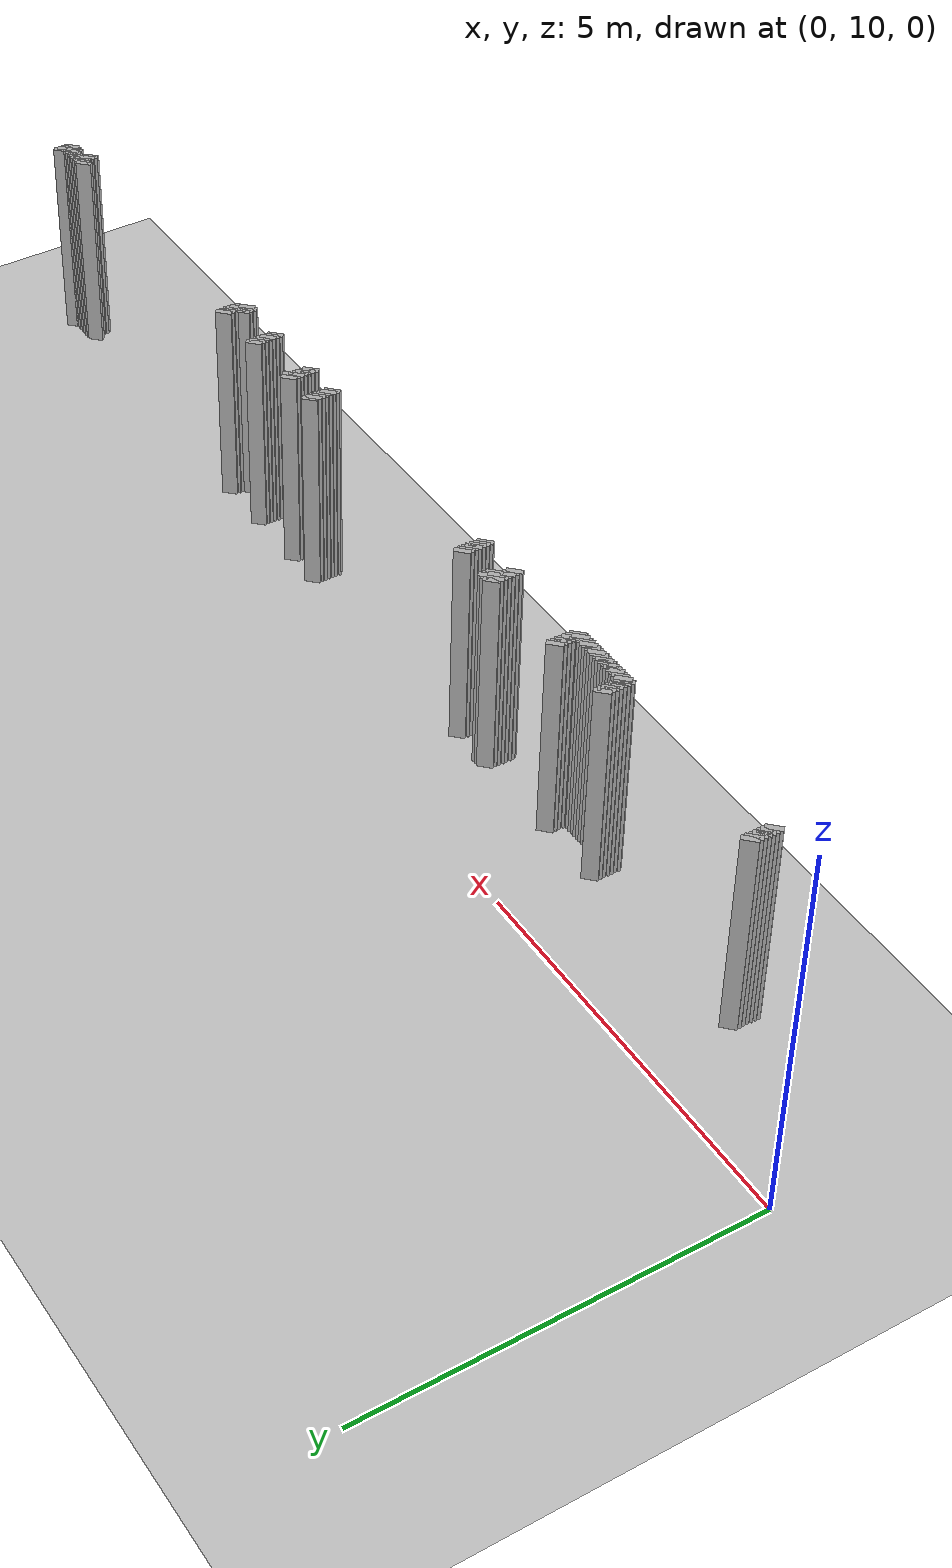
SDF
<sdf version="1.5">
 <world name="default">
  <include><uri>model://ground_plane</uri></include>
  <include><uri>model://sun</uri></include>
  <model name="grey_wall_1905">
   <static>1</static>
   <link name="link">
    <pose>2.2 8.9  1.4 0 0 -0.7853981633974572</pose>
    <collision name="collision">
     <geometry><box><size>0.07071067811865513 .2  2.8</size></box></geometry>
    </collision>
    <visual name="visual">
     <cast_shadows>0</cast_shadows>
     <geometry><box><size>0.07071067811865513 .2  2.8</size></box></geometry>
    </visual>
   </link>
  </model>
  <model name="grey_wall_1906">
   <static>1</static>
   <link name="link">
    <pose>4.800000000000001 8.9  1.4 0 0 -0.7853981633974483</pose>
    <collision name="collision">
     <geometry><box><size>0.07071067811865576 .2  2.8</size></box></geometry>
    </collision>
    <visual name="visual">
     <cast_shadows>0</cast_shadows>
     <geometry><box><size>0.07071067811865576 .2  2.8</size></box></geometry>
    </visual>
   </link>
  </model>
  <model name="grey_wall_1907">
   <static>1</static>
   <link name="link">
    <pose>5.7 8.9  1.4 0 0 -0.7853981633974483</pose>
    <collision name="collision">
     <geometry><box><size>0.07071067811865576 .2  2.8</size></box></geometry>
    </collision>
    <visual name="visual">
     <cast_shadows>0</cast_shadows>
     <geometry><box><size>0.07071067811865576 .2  2.8</size></box></geometry>
    </visual>
   </link>
  </model>
  <model name="grey_wall_1908">
   <static>1</static>
   <link name="link">
    <pose>6.95 8.9  1.4 0 0 -0.7853981633974483</pose>
    <collision name="collision">
     <geometry><box><size>0.07071067811865576 .2  2.8</size></box></geometry>
    </collision>
    <visual name="visual">
     <cast_shadows>0</cast_shadows>
     <geometry><box><size>0.07071067811865576 .2  2.8</size></box></geometry>
    </visual>
   </link>
  </model>
  <model name="grey_wall_1909">
   <static>1</static>
   <link name="link">
    <pose>7.0 8.9  1.4 0 0 -0.7853981633974483</pose>
    <collision name="collision">
     <geometry><box><size>0.07071067811865576 .2  2.8</size></box></geometry>
    </collision>
    <visual name="visual">
     <cast_shadows>0</cast_shadows>
     <geometry><box><size>0.07071067811865576 .2  2.8</size></box></geometry>
    </visual>
   </link>
  </model>
  <model name="grey_wall_1910">
   <static>1</static>
   <link name="link">
    <pose>7.050000000000001 8.9  1.4 0 0 -0.7853981633974483</pose>
    <collision name="collision">
     <geometry><box><size>0.07071067811865576 .2  2.8</size></box></geometry>
    </collision>
    <visual name="visual">
     <cast_shadows>0</cast_shadows>
     <geometry><box><size>0.07071067811865576 .2  2.8</size></box></geometry>
    </visual>
   </link>
  </model>
  <model name="grey_wall_1911">
   <static>1</static>
   <link name="link">
    <pose>7.550000000000001 8.9  1.4 0 0 -0.7853981633974483</pose>
    <collision name="collision">
     <geometry><box><size>0.07071067811865576 .2  2.8</size></box></geometry>
    </collision>
    <visual name="visual">
     <cast_shadows>0</cast_shadows>
     <geometry><box><size>0.07071067811865576 .2  2.8</size></box></geometry>
    </visual>
   </link>
  </model>
  <model name="grey_wall_1912">
   <static>1</static>
   <link name="link">
    <pose>10.9 8.9  1.4 0 0 -0.7853981633974483</pose>
    <collision name="collision">
     <geometry><box><size>0.07071067811865576 .2  2.8</size></box></geometry>
    </collision>
    <visual name="visual">
     <cast_shadows>0</cast_shadows>
     <geometry><box><size>0.07071067811865576 .2  2.8</size></box></geometry>
    </visual>
   </link>
  </model>
  <model name="grey_wall_1913">
   <static>1</static>
   <link name="link">
    <pose>11.4 8.9  1.4 0 0 -0.7853981633974483</pose>
    <collision name="collision">
     <geometry><box><size>0.07071067811865576 .2  2.8</size></box></geometry>
    </collision>
    <visual name="visual">
     <cast_shadows>0</cast_shadows>
     <geometry><box><size>0.07071067811865576 .2  2.8</size></box></geometry>
    </visual>
   </link>
  </model>
  <model name="grey_wall_1914">
   <static>1</static>
   <link name="link">
    <pose>12.25 8.9  1.4 0 0 -0.7853981633974483</pose>
    <collision name="collision">
     <geometry><box><size>0.07071067811865576 .2  2.8</size></box></geometry>
    </collision>
    <visual name="visual">
     <cast_shadows>0</cast_shadows>
     <geometry><box><size>0.07071067811865576 .2  2.8</size></box></geometry>
    </visual>
   </link>
  </model>
  <model name="grey_wall_1915">
   <static>1</static>
   <link name="link">
    <pose>13.0 8.9  1.4 0 0 -0.7853981633974483</pose>
    <collision name="collision">
     <geometry><box><size>0.07071067811865576 .2  2.8</size></box></geometry>
    </collision>
    <visual name="visual">
     <cast_shadows>0</cast_shadows>
     <geometry><box><size>0.07071067811865576 .2  2.8</size></box></geometry>
    </visual>
   </link>
  </model>
  <model name="grey_wall_1916">
   <static>1</static>
   <link name="link">
    <pose>17.400000000000002 8.9  1.4 0 0 -0.7853981633974838</pose>
    <collision name="collision">
     <geometry><box><size>0.07071067811865325 .2  2.8</size></box></geometry>
    </collision>
    <visual name="visual">
     <cast_shadows>0</cast_shadows>
     <geometry><box><size>0.07071067811865325 .2  2.8</size></box></geometry>
    </visual>
   </link>
  </model>
  <model name="grey_wall_1917">
   <static>1</static>
   <link name="link">
    <pose>2.2 8.85  1.4 0 0 -0.7853981633974572</pose>
    <collision name="collision">
     <geometry><box><size>0.07071067811865513 .2  2.8</size></box></geometry>
    </collision>
    <visual name="visual">
     <cast_shadows>0</cast_shadows>
     <geometry><box><size>0.07071067811865513 .2  2.8</size></box></geometry>
    </visual>
   </link>
  </model>
  <model name="grey_wall_1918">
   <static>1</static>
   <link name="link">
    <pose>4.800000000000001 8.85  1.4 0 0 -0.7853981633974483</pose>
    <collision name="collision">
     <geometry><box><size>0.07071067811865576 .2  2.8</size></box></geometry>
    </collision>
    <visual name="visual">
     <cast_shadows>0</cast_shadows>
     <geometry><box><size>0.07071067811865576 .2  2.8</size></box></geometry>
    </visual>
   </link>
  </model>
  <model name="grey_wall_1919">
   <static>1</static>
   <link name="link">
    <pose>5.7 8.85  1.4 0 0 -0.7853981633974483</pose>
    <collision name="collision">
     <geometry><box><size>0.07071067811865576 .2  2.8</size></box></geometry>
    </collision>
    <visual name="visual">
     <cast_shadows>0</cast_shadows>
     <geometry><box><size>0.07071067811865576 .2  2.8</size></box></geometry>
    </visual>
   </link>
  </model>
  <model name="grey_wall_1920">
   <static>1</static>
   <link name="link">
    <pose>6.95 8.85  1.4 0 0 -0.7853981633974483</pose>
    <collision name="collision">
     <geometry><box><size>0.07071067811865576 .2  2.8</size></box></geometry>
    </collision>
    <visual name="visual">
     <cast_shadows>0</cast_shadows>
     <geometry><box><size>0.07071067811865576 .2  2.8</size></box></geometry>
    </visual>
   </link>
  </model>
  <model name="grey_wall_1921">
   <static>1</static>
   <link name="link">
    <pose>7.050000000000001 8.85  1.4 0 0 -0.7853981633974483</pose>
    <collision name="collision">
     <geometry><box><size>0.07071067811865576 .2  2.8</size></box></geometry>
    </collision>
    <visual name="visual">
     <cast_shadows>0</cast_shadows>
     <geometry><box><size>0.07071067811865576 .2  2.8</size></box></geometry>
    </visual>
   </link>
  </model>
  <model name="grey_wall_1922">
   <static>1</static>
   <link name="link">
    <pose>7.550000000000001 8.85  1.4 0 0 -0.7853981633974483</pose>
    <collision name="collision">
     <geometry><box><size>0.07071067811865576 .2  2.8</size></box></geometry>
    </collision>
    <visual name="visual">
     <cast_shadows>0</cast_shadows>
     <geometry><box><size>0.07071067811865576 .2  2.8</size></box></geometry>
    </visual>
   </link>
  </model>
  <model name="grey_wall_1923">
   <static>1</static>
   <link name="link">
    <pose>10.9 8.85  1.4 0 0 -0.7853981633974483</pose>
    <collision name="collision">
     <geometry><box><size>0.07071067811865576 .2  2.8</size></box></geometry>
    </collision>
    <visual name="visual">
     <cast_shadows>0</cast_shadows>
     <geometry><box><size>0.07071067811865576 .2  2.8</size></box></geometry>
    </visual>
   </link>
  </model>
  <model name="grey_wall_1924">
   <static>1</static>
   <link name="link">
    <pose>11.4 8.85  1.4 0 0 -0.7853981633974483</pose>
    <collision name="collision">
     <geometry><box><size>0.07071067811865576 .2  2.8</size></box></geometry>
    </collision>
    <visual name="visual">
     <cast_shadows>0</cast_shadows>
     <geometry><box><size>0.07071067811865576 .2  2.8</size></box></geometry>
    </visual>
   </link>
  </model>
  <model name="grey_wall_1925">
   <static>1</static>
   <link name="link">
    <pose>11.450000000000001 8.85  1.4 0 0 -0.7853981633974483</pose>
    <collision name="collision">
     <geometry><box><size>0.07071067811865576 .2  2.8</size></box></geometry>
    </collision>
    <visual name="visual">
     <cast_shadows>0</cast_shadows>
     <geometry><box><size>0.07071067811865576 .2  2.8</size></box></geometry>
    </visual>
   </link>
  </model>
  <model name="grey_wall_1926">
   <static>1</static>
   <link name="link">
    <pose>12.25 8.85  1.4 0 0 -0.7853981633974483</pose>
    <collision name="collision">
     <geometry><box><size>0.07071067811865576 .2  2.8</size></box></geometry>
    </collision>
    <visual name="visual">
     <cast_shadows>0</cast_shadows>
     <geometry><box><size>0.07071067811865576 .2  2.8</size></box></geometry>
    </visual>
   </link>
  </model>
  <model name="grey_wall_1927">
   <static>1</static>
   <link name="link">
    <pose>13.0 8.85  1.4 0 0 -0.7853981633974483</pose>
    <collision name="collision">
     <geometry><box><size>0.07071067811865576 .2  2.8</size></box></geometry>
    </collision>
    <visual name="visual">
     <cast_shadows>0</cast_shadows>
     <geometry><box><size>0.07071067811865576 .2  2.8</size></box></geometry>
    </visual>
   </link>
  </model>
  <model name="grey_wall_1928">
   <static>1</static>
   <link name="link">
    <pose>17.400000000000002 8.85  1.4 0 0 -0.7853981633974838</pose>
    <collision name="collision">
     <geometry><box><size>0.07071067811865325 .2  2.8</size></box></geometry>
    </collision>
    <visual name="visual">
     <cast_shadows>0</cast_shadows>
     <geometry><box><size>0.07071067811865325 .2  2.8</size></box></geometry>
    </visual>
   </link>
  </model>
  <model name="grey_wall_1929">
   <static>1</static>
   <link name="link">
    <pose>2.2 8.8  1.4 0 0 -0.7853981633974572</pose>
    <collision name="collision">
     <geometry><box><size>0.07071067811865513 .2  2.8</size></box></geometry>
    </collision>
    <visual name="visual">
     <cast_shadows>0</cast_shadows>
     <geometry><box><size>0.07071067811865513 .2  2.8</size></box></geometry>
    </visual>
   </link>
  </model>
  <model name="grey_wall_1930">
   <static>1</static>
   <link name="link">
    <pose>4.800000000000001 8.8  1.4 0 0 -0.7853981633974483</pose>
    <collision name="collision">
     <geometry><box><size>0.07071067811865576 .2  2.8</size></box></geometry>
    </collision>
    <visual name="visual">
     <cast_shadows>0</cast_shadows>
     <geometry><box><size>0.07071067811865576 .2  2.8</size></box></geometry>
    </visual>
   </link>
  </model>
  <model name="grey_wall_1931">
   <static>1</static>
   <link name="link">
    <pose>5.7 8.8  1.4 0 0 -0.7853981633974483</pose>
    <collision name="collision">
     <geometry><box><size>0.07071067811865576 .2  2.8</size></box></geometry>
    </collision>
    <visual name="visual">
     <cast_shadows>0</cast_shadows>
     <geometry><box><size>0.07071067811865576 .2  2.8</size></box></geometry>
    </visual>
   </link>
  </model>
  <model name="grey_wall_1932">
   <static>1</static>
   <link name="link">
    <pose>6.95 8.8  1.4 0 0 -0.7853981633974483</pose>
    <collision name="collision">
     <geometry><box><size>0.07071067811865576 .2  2.8</size></box></geometry>
    </collision>
    <visual name="visual">
     <cast_shadows>0</cast_shadows>
     <geometry><box><size>0.07071067811865576 .2  2.8</size></box></geometry>
    </visual>
   </link>
  </model>
  <model name="grey_wall_1933">
   <static>1</static>
   <link name="link">
    <pose>7.0 8.8  1.4 0 0 -0.7853981633974483</pose>
    <collision name="collision">
     <geometry><box><size>0.07071067811865576 .2  2.8</size></box></geometry>
    </collision>
    <visual name="visual">
     <cast_shadows>0</cast_shadows>
     <geometry><box><size>0.07071067811865576 .2  2.8</size></box></geometry>
    </visual>
   </link>
  </model>
  <model name="grey_wall_1934">
   <static>1</static>
   <link name="link">
    <pose>7.050000000000001 8.8  1.4 0 0 -0.7853981633974483</pose>
    <collision name="collision">
     <geometry><box><size>0.07071067811865576 .2  2.8</size></box></geometry>
    </collision>
    <visual name="visual">
     <cast_shadows>0</cast_shadows>
     <geometry><box><size>0.07071067811865576 .2  2.8</size></box></geometry>
    </visual>
   </link>
  </model>
  <model name="grey_wall_1935">
   <static>1</static>
   <link name="link">
    <pose>7.550000000000001 8.8  1.4 0 0 -0.7853981633974483</pose>
    <collision name="collision">
     <geometry><box><size>0.07071067811865576 .2  2.8</size></box></geometry>
    </collision>
    <visual name="visual">
     <cast_shadows>0</cast_shadows>
     <geometry><box><size>0.07071067811865576 .2  2.8</size></box></geometry>
    </visual>
   </link>
  </model>
  <model name="grey_wall_1936">
   <static>1</static>
   <link name="link">
    <pose>10.9 8.8  1.4 0 0 -0.7853981633974483</pose>
    <collision name="collision">
     <geometry><box><size>0.07071067811865576 .2  2.8</size></box></geometry>
    </collision>
    <visual name="visual">
     <cast_shadows>0</cast_shadows>
     <geometry><box><size>0.07071067811865576 .2  2.8</size></box></geometry>
    </visual>
   </link>
  </model>
  <model name="grey_wall_1937">
   <static>1</static>
   <link name="link">
    <pose>11.4 8.8  1.4 0 0 -0.7853981633974483</pose>
    <collision name="collision">
     <geometry><box><size>0.07071067811865576 .2  2.8</size></box></geometry>
    </collision>
    <visual name="visual">
     <cast_shadows>0</cast_shadows>
     <geometry><box><size>0.07071067811865576 .2  2.8</size></box></geometry>
    </visual>
   </link>
  </model>
  <model name="grey_wall_1938">
   <static>1</static>
   <link name="link">
    <pose>12.25 8.8  1.4 0 0 -0.7853981633974483</pose>
    <collision name="collision">
     <geometry><box><size>0.07071067811865576 .2  2.8</size></box></geometry>
    </collision>
    <visual name="visual">
     <cast_shadows>0</cast_shadows>
     <geometry><box><size>0.07071067811865576 .2  2.8</size></box></geometry>
    </visual>
   </link>
  </model>
  <model name="grey_wall_1939">
   <static>1</static>
   <link name="link">
    <pose>13.0 8.8  1.4 0 0 -0.7853981633974483</pose>
    <collision name="collision">
     <geometry><box><size>0.07071067811865576 .2  2.8</size></box></geometry>
    </collision>
    <visual name="visual">
     <cast_shadows>0</cast_shadows>
     <geometry><box><size>0.07071067811865576 .2  2.8</size></box></geometry>
    </visual>
   </link>
  </model>
  <model name="grey_wall_1940">
   <static>1</static>
   <link name="link">
    <pose>16.95 8.8  1.4 0 0 -0.7853981633974838</pose>
    <collision name="collision">
     <geometry><box><size>0.07071067811865325 .2  2.8</size></box></geometry>
    </collision>
    <visual name="visual">
     <cast_shadows>0</cast_shadows>
     <geometry><box><size>0.07071067811865325 .2  2.8</size></box></geometry>
    </visual>
   </link>
  </model>
  <model name="grey_wall_1941">
   <static>1</static>
   <link name="link">
    <pose>17.0 8.8  1.4 0 0 -0.7853981633974838</pose>
    <collision name="collision">
     <geometry><box><size>0.07071067811865325 .2  2.8</size></box></geometry>
    </collision>
    <visual name="visual">
     <cast_shadows>0</cast_shadows>
     <geometry><box><size>0.07071067811865325 .2  2.8</size></box></geometry>
    </visual>
   </link>
  </model>
  <model name="grey_wall_1942">
   <static>1</static>
   <link name="link">
    <pose>17.05 8.8  1.4 0 0 -0.7853981633974838</pose>
    <collision name="collision">
     <geometry><box><size>0.07071067811865325 .2  2.8</size></box></geometry>
    </collision>
    <visual name="visual">
     <cast_shadows>0</cast_shadows>
     <geometry><box><size>0.07071067811865325 .2  2.8</size></box></geometry>
    </visual>
   </link>
  </model>
  <model name="grey_wall_1943">
   <static>1</static>
   <link name="link">
    <pose>17.1 8.8  1.4 0 0 -0.7853981633974838</pose>
    <collision name="collision">
     <geometry><box><size>0.07071067811865325 .2  2.8</size></box></geometry>
    </collision>
    <visual name="visual">
     <cast_shadows>0</cast_shadows>
     <geometry><box><size>0.07071067811865325 .2  2.8</size></box></geometry>
    </visual>
   </link>
  </model>
  <model name="grey_wall_1944">
   <static>1</static>
   <link name="link">
    <pose>17.150000000000002 8.8  1.4 0 0 -0.7853981633974838</pose>
    <collision name="collision">
     <geometry><box><size>0.07071067811865325 .2  2.8</size></box></geometry>
    </collision>
    <visual name="visual">
     <cast_shadows>0</cast_shadows>
     <geometry><box><size>0.07071067811865325 .2  2.8</size></box></geometry>
    </visual>
   </link>
  </model>
  <model name="grey_wall_1945">
   <static>1</static>
   <link name="link">
    <pose>17.2 8.8  1.4 0 0 -0.7853981633974838</pose>
    <collision name="collision">
     <geometry><box><size>0.07071067811865325 .2  2.8</size></box></geometry>
    </collision>
    <visual name="visual">
     <cast_shadows>0</cast_shadows>
     <geometry><box><size>0.07071067811865325 .2  2.8</size></box></geometry>
    </visual>
   </link>
  </model>
  <model name="grey_wall_1946">
   <static>1</static>
   <link name="link">
    <pose>17.25 8.8  1.4 0 0 -0.7853981633974838</pose>
    <collision name="collision">
     <geometry><box><size>0.07071067811865325 .2  2.8</size></box></geometry>
    </collision>
    <visual name="visual">
     <cast_shadows>0</cast_shadows>
     <geometry><box><size>0.07071067811865325 .2  2.8</size></box></geometry>
    </visual>
   </link>
  </model>
  <model name="grey_wall_1947">
   <static>1</static>
   <link name="link">
    <pose>17.3 8.8  1.4 0 0 -0.7853981633974838</pose>
    <collision name="collision">
     <geometry><box><size>0.07071067811865325 .2  2.8</size></box></geometry>
    </collision>
    <visual name="visual">
     <cast_shadows>0</cast_shadows>
     <geometry><box><size>0.07071067811865325 .2  2.8</size></box></geometry>
    </visual>
   </link>
  </model>
  <model name="grey_wall_1948">
   <static>1</static>
   <link name="link">
    <pose>17.400000000000002 8.8  1.4 0 0 -0.7853981633974838</pose>
    <collision name="collision">
     <geometry><box><size>0.07071067811865325 .2  2.8</size></box></geometry>
    </collision>
    <visual name="visual">
     <cast_shadows>0</cast_shadows>
     <geometry><box><size>0.07071067811865325 .2  2.8</size></box></geometry>
    </visual>
   </link>
  </model>
  <model name="grey_wall_1949">
   <static>1</static>
   <link name="link">
    <pose>2.2 8.75  1.4 0 0 -0.7853981633974572</pose>
    <collision name="collision">
     <geometry><box><size>0.07071067811865513 .2  2.8</size></box></geometry>
    </collision>
    <visual name="visual">
     <cast_shadows>0</cast_shadows>
     <geometry><box><size>0.07071067811865513 .2  2.8</size></box></geometry>
    </visual>
   </link>
  </model>
  <model name="grey_wall_1950">
   <static>1</static>
   <link name="link">
    <pose>4.800000000000001 8.75  1.4 0 0 -0.7853981633974483</pose>
    <collision name="collision">
     <geometry><box><size>0.07071067811865576 .2  2.8</size></box></geometry>
    </collision>
    <visual name="visual">
     <cast_shadows>0</cast_shadows>
     <geometry><box><size>0.07071067811865576 .2  2.8</size></box></geometry>
    </visual>
   </link>
  </model>
  <model name="grey_wall_1951">
   <static>1</static>
   <link name="link">
    <pose>5.7 8.75  1.4 0 0 -0.7853981633974483</pose>
    <collision name="collision">
     <geometry><box><size>0.07071067811865576 .2  2.8</size></box></geometry>
    </collision>
    <visual name="visual">
     <cast_shadows>0</cast_shadows>
     <geometry><box><size>0.07071067811865576 .2  2.8</size></box></geometry>
    </visual>
   </link>
  </model>
  <model name="grey_wall_1952">
   <static>1</static>
   <link name="link">
    <pose>6.95 8.75  1.4 0 0 -0.7853981633974483</pose>
    <collision name="collision">
     <geometry><box><size>0.07071067811865576 .2  2.8</size></box></geometry>
    </collision>
    <visual name="visual">
     <cast_shadows>0</cast_shadows>
     <geometry><box><size>0.07071067811865576 .2  2.8</size></box></geometry>
    </visual>
   </link>
  </model>
  <model name="grey_wall_1953">
   <static>1</static>
   <link name="link">
    <pose>7.550000000000001 8.75  1.4 0 0 -0.7853981633974483</pose>
    <collision name="collision">
     <geometry><box><size>0.07071067811865576 .2  2.8</size></box></geometry>
    </collision>
    <visual name="visual">
     <cast_shadows>0</cast_shadows>
     <geometry><box><size>0.07071067811865576 .2  2.8</size></box></geometry>
    </visual>
   </link>
  </model>
  <model name="grey_wall_1954">
   <static>1</static>
   <link name="link">
    <pose>10.9 8.75  1.4 0 0 -0.7853981633974483</pose>
    <collision name="collision">
     <geometry><box><size>0.07071067811865576 .2  2.8</size></box></geometry>
    </collision>
    <visual name="visual">
     <cast_shadows>0</cast_shadows>
     <geometry><box><size>0.07071067811865576 .2  2.8</size></box></geometry>
    </visual>
   </link>
  </model>
  <model name="grey_wall_1955">
   <static>1</static>
   <link name="link">
    <pose>11.4 8.75  1.4 0 0 -0.7853981633974483</pose>
    <collision name="collision">
     <geometry><box><size>0.07071067811865576 .2  2.8</size></box></geometry>
    </collision>
    <visual name="visual">
     <cast_shadows>0</cast_shadows>
     <geometry><box><size>0.07071067811865576 .2  2.8</size></box></geometry>
    </visual>
   </link>
  </model>
  <model name="grey_wall_1956">
   <static>1</static>
   <link name="link">
    <pose>12.25 8.75  1.4 0 0 -0.7853981633974483</pose>
    <collision name="collision">
     <geometry><box><size>0.07071067811865576 .2  2.8</size></box></geometry>
    </collision>
    <visual name="visual">
     <cast_shadows>0</cast_shadows>
     <geometry><box><size>0.07071067811865576 .2  2.8</size></box></geometry>
    </visual>
   </link>
  </model>
  <model name="grey_wall_1957">
   <static>1</static>
   <link name="link">
    <pose>13.0 8.75  1.4 0 0 -0.7853981633974483</pose>
    <collision name="collision">
     <geometry><box><size>0.07071067811865576 .2  2.8</size></box></geometry>
    </collision>
    <visual name="visual">
     <cast_shadows>0</cast_shadows>
     <geometry><box><size>0.07071067811865576 .2  2.8</size></box></geometry>
    </visual>
   </link>
  </model>
  <model name="grey_wall_1958">
   <static>1</static>
   <link name="link">
    <pose>17.05 8.75  1.4 0 0 -0.7853981633974838</pose>
    <collision name="collision">
     <geometry><box><size>0.07071067811865325 .2  2.8</size></box></geometry>
    </collision>
    <visual name="visual">
     <cast_shadows>0</cast_shadows>
     <geometry><box><size>0.07071067811865325 .2  2.8</size></box></geometry>
    </visual>
   </link>
  </model>
  <model name="grey_wall_1959">
   <static>1</static>
   <link name="link">
    <pose>17.3 8.75  1.4 0 0 -0.7853981633974838</pose>
    <collision name="collision">
     <geometry><box><size>0.07071067811865325 .2  2.8</size></box></geometry>
    </collision>
    <visual name="visual">
     <cast_shadows>0</cast_shadows>
     <geometry><box><size>0.07071067811865325 .2  2.8</size></box></geometry>
    </visual>
   </link>
  </model>
  <model name="grey_wall_1960">
   <static>1</static>
   <link name="link">
    <pose>17.35 8.75  1.4 0 0 -0.7853981633974838</pose>
    <collision name="collision">
     <geometry><box><size>0.07071067811865325 .2  2.8</size></box></geometry>
    </collision>
    <visual name="visual">
     <cast_shadows>0</cast_shadows>
     <geometry><box><size>0.07071067811865325 .2  2.8</size></box></geometry>
    </visual>
   </link>
  </model>
  <model name="grey_wall_1961">
   <static>1</static>
   <link name="link">
    <pose>17.400000000000002 8.75  1.4 0 0 -0.7853981633974838</pose>
    <collision name="collision">
     <geometry><box><size>0.07071067811865325 .2  2.8</size></box></geometry>
    </collision>
    <visual name="visual">
     <cast_shadows>0</cast_shadows>
     <geometry><box><size>0.07071067811865325 .2  2.8</size></box></geometry>
    </visual>
   </link>
  </model>
  <model name="grey_wall_1962">
   <static>1</static>
   <link name="link">
    <pose>2.2 8.700000000000001  1.4 0 0 -0.7853981633974572</pose>
    <collision name="collision">
     <geometry><box><size>0.07071067811865513 .2  2.8</size></box></geometry>
    </collision>
    <visual name="visual">
     <cast_shadows>0</cast_shadows>
     <geometry><box><size>0.07071067811865513 .2  2.8</size></box></geometry>
    </visual>
   </link>
  </model>
  <model name="grey_wall_1963">
   <static>1</static>
   <link name="link">
    <pose>4.800000000000001 8.700000000000001  1.4 0 0 -0.7853981633974483</pose>
    <collision name="collision">
     <geometry><box><size>0.07071067811865576 .2  2.8</size></box></geometry>
    </collision>
    <visual name="visual">
     <cast_shadows>0</cast_shadows>
     <geometry><box><size>0.07071067811865576 .2  2.8</size></box></geometry>
    </visual>
   </link>
  </model>
  <model name="grey_wall_1964">
   <static>1</static>
   <link name="link">
    <pose>5.7 8.700000000000001  1.4 0 0 -0.7853981633974483</pose>
    <collision name="collision">
     <geometry><box><size>0.07071067811865576 .2  2.8</size></box></geometry>
    </collision>
    <visual name="visual">
     <cast_shadows>0</cast_shadows>
     <geometry><box><size>0.07071067811865576 .2  2.8</size></box></geometry>
    </visual>
   </link>
  </model>
  <model name="grey_wall_1965">
   <static>1</static>
   <link name="link">
    <pose>6.95 8.700000000000001  1.4 0 0 -0.7853981633974483</pose>
    <collision name="collision">
     <geometry><box><size>0.07071067811865576 .2  2.8</size></box></geometry>
    </collision>
    <visual name="visual">
     <cast_shadows>0</cast_shadows>
     <geometry><box><size>0.07071067811865576 .2  2.8</size></box></geometry>
    </visual>
   </link>
  </model>
  <model name="grey_wall_1966">
   <static>1</static>
   <link name="link">
    <pose>7.550000000000001 8.700000000000001  1.4 0 0 -0.7853981633974483</pose>
    <collision name="collision">
     <geometry><box><size>0.07071067811865576 .2  2.8</size></box></geometry>
    </collision>
    <visual name="visual">
     <cast_shadows>0</cast_shadows>
     <geometry><box><size>0.07071067811865576 .2  2.8</size></box></geometry>
    </visual>
   </link>
  </model>
  <model name="grey_wall_1967">
   <static>1</static>
   <link name="link">
    <pose>10.9 8.700000000000001  1.4 0 0 -0.7853981633974483</pose>
    <collision name="collision">
     <geometry><box><size>0.07071067811865576 .2  2.8</size></box></geometry>
    </collision>
    <visual name="visual">
     <cast_shadows>0</cast_shadows>
     <geometry><box><size>0.07071067811865576 .2  2.8</size></box></geometry>
    </visual>
   </link>
  </model>
  <model name="grey_wall_1968">
   <static>1</static>
   <link name="link">
    <pose>11.4 8.700000000000001  1.4 0 0 -0.7853981633974483</pose>
    <collision name="collision">
     <geometry><box><size>0.07071067811865576 .2  2.8</size></box></geometry>
    </collision>
    <visual name="visual">
     <cast_shadows>0</cast_shadows>
     <geometry><box><size>0.07071067811865576 .2  2.8</size></box></geometry>
    </visual>
   </link>
  </model>
  <model name="grey_wall_1969">
   <static>1</static>
   <link name="link">
    <pose>12.25 8.700000000000001  1.4 0 0 -0.7853981633974483</pose>
    <collision name="collision">
     <geometry><box><size>0.07071067811865576 .2  2.8</size></box></geometry>
    </collision>
    <visual name="visual">
     <cast_shadows>0</cast_shadows>
     <geometry><box><size>0.07071067811865576 .2  2.8</size></box></geometry>
    </visual>
   </link>
  </model>
  <model name="grey_wall_1970">
   <static>1</static>
   <link name="link">
    <pose>12.9 8.700000000000001  1.4 0 0 -0.7853981633974483</pose>
    <collision name="collision">
     <geometry><box><size>0.07071067811865576 .2  2.8</size></box></geometry>
    </collision>
    <visual name="visual">
     <cast_shadows>0</cast_shadows>
     <geometry><box><size>0.07071067811865576 .2  2.8</size></box></geometry>
    </visual>
   </link>
  </model>
  <model name="grey_wall_1971">
   <static>1</static>
   <link name="link">
    <pose>12.950000000000001 8.700000000000001  1.4 0 0 -0.7853981633974483</pose>
    <collision name="collision">
     <geometry><box><size>0.07071067811865576 .2  2.8</size></box></geometry>
    </collision>
    <visual name="visual">
     <cast_shadows>0</cast_shadows>
     <geometry><box><size>0.07071067811865576 .2  2.8</size></box></geometry>
    </visual>
   </link>
  </model>
  <model name="grey_wall_1972">
   <static>1</static>
   <link name="link">
    <pose>13.0 8.700000000000001  1.4 0 0 -0.7853981633974483</pose>
    <collision name="collision">
     <geometry><box><size>0.07071067811865576 .2  2.8</size></box></geometry>
    </collision>
    <visual name="visual">
     <cast_shadows>0</cast_shadows>
     <geometry><box><size>0.07071067811865576 .2  2.8</size></box></geometry>
    </visual>
   </link>
  </model>
  <model name="grey_wall_1973">
   <static>1</static>
   <link name="link">
    <pose>17.05 8.700000000000001  1.4 0 0 -0.7853981633974838</pose>
    <collision name="collision">
     <geometry><box><size>0.07071067811865325 .2  2.8</size></box></geometry>
    </collision>
    <visual name="visual">
     <cast_shadows>0</cast_shadows>
     <geometry><box><size>0.07071067811865325 .2  2.8</size></box></geometry>
    </visual>
   </link>
  </model>
  <model name="grey_wall_1974">
   <static>1</static>
   <link name="link">
    <pose>2.2 8.65  1.4 0 0 -0.7853981633974572</pose>
    <collision name="collision">
     <geometry><box><size>0.07071067811865513 .2  2.8</size></box></geometry>
    </collision>
    <visual name="visual">
     <cast_shadows>0</cast_shadows>
     <geometry><box><size>0.07071067811865513 .2  2.8</size></box></geometry>
    </visual>
   </link>
  </model>
  <model name="grey_wall_1975">
   <static>1</static>
   <link name="link">
    <pose>4.800000000000001 8.65  1.4 0 0 -0.7853981633974483</pose>
    <collision name="collision">
     <geometry><box><size>0.07071067811865576 .2  2.8</size></box></geometry>
    </collision>
    <visual name="visual">
     <cast_shadows>0</cast_shadows>
     <geometry><box><size>0.07071067811865576 .2  2.8</size></box></geometry>
    </visual>
   </link>
  </model>
  <model name="grey_wall_1976">
   <static>1</static>
   <link name="link">
    <pose>5.7 8.65  1.4 0 0 -0.7853981633974483</pose>
    <collision name="collision">
     <geometry><box><size>0.07071067811865576 .2  2.8</size></box></geometry>
    </collision>
    <visual name="visual">
     <cast_shadows>0</cast_shadows>
     <geometry><box><size>0.07071067811865576 .2  2.8</size></box></geometry>
    </visual>
   </link>
  </model>
  <model name="grey_wall_1977">
   <static>1</static>
   <link name="link">
    <pose>6.95 8.65  1.4 0 0 -0.7853981633974483</pose>
    <collision name="collision">
     <geometry><box><size>0.07071067811865576 .2  2.8</size></box></geometry>
    </collision>
    <visual name="visual">
     <cast_shadows>0</cast_shadows>
     <geometry><box><size>0.07071067811865576 .2  2.8</size></box></geometry>
    </visual>
   </link>
  </model>
  <model name="grey_wall_1978">
   <static>1</static>
   <link name="link">
    <pose>7.550000000000001 8.65  1.4 0 0 -0.7853981633974483</pose>
    <collision name="collision">
     <geometry><box><size>0.07071067811865576 .2  2.8</size></box></geometry>
    </collision>
    <visual name="visual">
     <cast_shadows>0</cast_shadows>
     <geometry><box><size>0.07071067811865576 .2  2.8</size></box></geometry>
    </visual>
   </link>
  </model>
  <model name="grey_wall_1979">
   <static>1</static>
   <link name="link">
    <pose>10.9 8.65  1.4 0 0 -0.7853981633974483</pose>
    <collision name="collision">
     <geometry><box><size>0.07071067811865576 .2  2.8</size></box></geometry>
    </collision>
    <visual name="visual">
     <cast_shadows>0</cast_shadows>
     <geometry><box><size>0.07071067811865576 .2  2.8</size></box></geometry>
    </visual>
   </link>
  </model>
  <model name="grey_wall_1980">
   <static>1</static>
   <link name="link">
    <pose>11.4 8.65  1.4 0 0 -0.7853981633974483</pose>
    <collision name="collision">
     <geometry><box><size>0.07071067811865576 .2  2.8</size></box></geometry>
    </collision>
    <visual name="visual">
     <cast_shadows>0</cast_shadows>
     <geometry><box><size>0.07071067811865576 .2  2.8</size></box></geometry>
    </visual>
   </link>
  </model>
  <model name="grey_wall_1981">
   <static>1</static>
   <link name="link">
    <pose>12.25 8.65  1.4 0 0 -0.7853981633974483</pose>
    <collision name="collision">
     <geometry><box><size>0.07071067811865576 .2  2.8</size></box></geometry>
    </collision>
    <visual name="visual">
     <cast_shadows>0</cast_shadows>
     <geometry><box><size>0.07071067811865576 .2  2.8</size></box></geometry>
    </visual>
   </link>
  </model>
  <model name="grey_wall_1982">
   <static>1</static>
   <link name="link">
    <pose>12.9 8.65  1.4 0 0 -0.7853981633974483</pose>
    <collision name="collision">
     <geometry><box><size>0.07071067811865576 .2  2.8</size></box></geometry>
    </collision>
    <visual name="visual">
     <cast_shadows>0</cast_shadows>
     <geometry><box><size>0.07071067811865576 .2  2.8</size></box></geometry>
    </visual>
   </link>
  </model>
  <model name="grey_wall_1983">
   <static>1</static>
   <link name="link">
    <pose>13.0 8.65  1.4 0 0 -0.7853981633974483</pose>
    <collision name="collision">
     <geometry><box><size>0.07071067811865576 .2  2.8</size></box></geometry>
    </collision>
    <visual name="visual">
     <cast_shadows>0</cast_shadows>
     <geometry><box><size>0.07071067811865576 .2  2.8</size></box></geometry>
    </visual>
   </link>
  </model>
  <model name="grey_wall_1984">
   <static>1</static>
   <link name="link">
    <pose>17.05 8.65  1.4 0 0 -0.7853981633974838</pose>
    <collision name="collision">
     <geometry><box><size>0.07071067811865325 .2  2.8</size></box></geometry>
    </collision>
    <visual name="visual">
     <cast_shadows>0</cast_shadows>
     <geometry><box><size>0.07071067811865325 .2  2.8</size></box></geometry>
    </visual>
   </link>
  </model>
  <model name="grey_wall_1985">
   <static>1</static>
   <link name="link">
    <pose>2.2 8.6  1.4 0 0 -0.7853981633974572</pose>
    <collision name="collision">
     <geometry><box><size>0.07071067811865513 .2  2.8</size></box></geometry>
    </collision>
    <visual name="visual">
     <cast_shadows>0</cast_shadows>
     <geometry><box><size>0.07071067811865513 .2  2.8</size></box></geometry>
    </visual>
   </link>
  </model>
  <model name="grey_wall_1986">
   <static>1</static>
   <link name="link">
    <pose>4.800000000000001 8.6  1.4 0 0 -0.7853981633974483</pose>
    <collision name="collision">
     <geometry><box><size>0.07071067811865576 .2  2.8</size></box></geometry>
    </collision>
    <visual name="visual">
     <cast_shadows>0</cast_shadows>
     <geometry><box><size>0.07071067811865576 .2  2.8</size></box></geometry>
    </visual>
   </link>
  </model>
  <model name="grey_wall_1987">
   <static>1</static>
   <link name="link">
    <pose>4.8500000000000005 8.6  1.4 0 0 -0.7853981633974483</pose>
    <collision name="collision">
     <geometry><box><size>0.07071067811865576 .2  2.8</size></box></geometry>
    </collision>
    <visual name="visual">
     <cast_shadows>0</cast_shadows>
     <geometry><box><size>0.07071067811865576 .2  2.8</size></box></geometry>
    </visual>
   </link>
  </model>
  <model name="grey_wall_1988">
   <static>1</static>
   <link name="link">
    <pose>4.9 8.6  1.4 0 0 -0.7853981633974483</pose>
    <collision name="collision">
     <geometry><box><size>0.07071067811865576 .2  2.8</size></box></geometry>
    </collision>
    <visual name="visual">
     <cast_shadows>0</cast_shadows>
     <geometry><box><size>0.07071067811865576 .2  2.8</size></box></geometry>
    </visual>
   </link>
  </model>
  <model name="grey_wall_1989">
   <static>1</static>
   <link name="link">
    <pose>4.95 8.6  1.4 0 0 -0.7853981633974483</pose>
    <collision name="collision">
     <geometry><box><size>0.07071067811865576 .2  2.8</size></box></geometry>
    </collision>
    <visual name="visual">
     <cast_shadows>0</cast_shadows>
     <geometry><box><size>0.07071067811865576 .2  2.8</size></box></geometry>
    </visual>
   </link>
  </model>
  <model name="grey_wall_1990">
   <static>1</static>
   <link name="link">
    <pose>5.0 8.6  1.4 0 0 -0.7853981633974483</pose>
    <collision name="collision">
     <geometry><box><size>0.07071067811865576 .2  2.8</size></box></geometry>
    </collision>
    <visual name="visual">
     <cast_shadows>0</cast_shadows>
     <geometry><box><size>0.07071067811865576 .2  2.8</size></box></geometry>
    </visual>
   </link>
  </model>
  <model name="grey_wall_1991">
   <static>1</static>
   <link name="link">
    <pose>5.050000000000001 8.6  1.4 0 0 -0.7853981633974483</pose>
    <collision name="collision">
     <geometry><box><size>0.07071067811865576 .2  2.8</size></box></geometry>
    </collision>
    <visual name="visual">
     <cast_shadows>0</cast_shadows>
     <geometry><box><size>0.07071067811865576 .2  2.8</size></box></geometry>
    </visual>
   </link>
  </model>
  <model name="grey_wall_1992">
   <static>1</static>
   <link name="link">
    <pose>5.1000000000000005 8.6  1.4 0 0 -0.7853981633974483</pose>
    <collision name="collision">
     <geometry><box><size>0.07071067811865576 .2  2.8</size></box></geometry>
    </collision>
    <visual name="visual">
     <cast_shadows>0</cast_shadows>
     <geometry><box><size>0.07071067811865576 .2  2.8</size></box></geometry>
    </visual>
   </link>
  </model>
  <model name="grey_wall_1993">
   <static>1</static>
   <link name="link">
    <pose>5.15 8.6  1.4 0 0 -0.7853981633974483</pose>
    <collision name="collision">
     <geometry><box><size>0.07071067811865576 .2  2.8</size></box></geometry>
    </collision>
    <visual name="visual">
     <cast_shadows>0</cast_shadows>
     <geometry><box><size>0.07071067811865576 .2  2.8</size></box></geometry>
    </visual>
   </link>
  </model>
  <model name="grey_wall_1994">
   <static>1</static>
   <link name="link">
    <pose>5.2 8.6  1.4 0 0 -0.7853981633974483</pose>
    <collision name="collision">
     <geometry><box><size>0.07071067811865576 .2  2.8</size></box></geometry>
    </collision>
    <visual name="visual">
     <cast_shadows>0</cast_shadows>
     <geometry><box><size>0.07071067811865576 .2  2.8</size></box></geometry>
    </visual>
   </link>
  </model>
  <model name="grey_wall_1995">
   <static>1</static>
   <link name="link">
    <pose>5.25 8.6  1.4 0 0 -0.7853981633974483</pose>
    <collision name="collision">
     <geometry><box><size>0.07071067811865576 .2  2.8</size></box></geometry>
    </collision>
    <visual name="visual">
     <cast_shadows>0</cast_shadows>
     <geometry><box><size>0.07071067811865576 .2  2.8</size></box></geometry>
    </visual>
   </link>
  </model>
  <model name="grey_wall_1996">
   <static>1</static>
   <link name="link">
    <pose>5.300000000000001 8.6  1.4 0 0 -0.7853981633974483</pose>
    <collision name="collision">
     <geometry><box><size>0.07071067811865576 .2  2.8</size></box></geometry>
    </collision>
    <visual name="visual">
     <cast_shadows>0</cast_shadows>
     <geometry><box><size>0.07071067811865576 .2  2.8</size></box></geometry>
    </visual>
   </link>
  </model>
  <model name="grey_wall_1997">
   <static>1</static>
   <link name="link">
    <pose>5.3500000000000005 8.6  1.4 0 0 -0.7853981633974483</pose>
    <collision name="collision">
     <geometry><box><size>0.07071067811865576 .2  2.8</size></box></geometry>
    </collision>
    <visual name="visual">
     <cast_shadows>0</cast_shadows>
     <geometry><box><size>0.07071067811865576 .2  2.8</size></box></geometry>
    </visual>
   </link>
  </model>
  <model name="grey_wall_1998">
   <static>1</static>
   <link name="link">
    <pose>5.4 8.6  1.4 0 0 -0.7853981633974483</pose>
    <collision name="collision">
     <geometry><box><size>0.07071067811865576 .2  2.8</size></box></geometry>
    </collision>
    <visual name="visual">
     <cast_shadows>0</cast_shadows>
     <geometry><box><size>0.07071067811865576 .2  2.8</size></box></geometry>
    </visual>
   </link>
  </model>
  <model name="grey_wall_1999">
   <static>1</static>
   <link name="link">
    <pose>5.45 8.6  1.4 0 0 -0.7853981633974483</pose>
    <collision name="collision">
     <geometry><box><size>0.07071067811865576 .2  2.8</size></box></geometry>
    </collision>
    <visual name="visual">
     <cast_shadows>0</cast_shadows>
     <geometry><box><size>0.07071067811865576 .2  2.8</size></box></geometry>
    </visual>
   </link>
  </model>
  <model name="grey_wall_2000">
   <static>1</static>
   <link name="link">
    <pose>5.5 8.6  1.4 0 0 -0.7853981633974483</pose>
    <collision name="collision">
     <geometry><box><size>0.07071067811865576 .2  2.8</size></box></geometry>
    </collision>
    <visual name="visual">
     <cast_shadows>0</cast_shadows>
     <geometry><box><size>0.07071067811865576 .2  2.8</size></box></geometry>
    </visual>
   </link>
  </model>
  <model name="grey_wall_2001">
   <static>1</static>
   <link name="link">
    <pose>5.550000000000001 8.6  1.4 0 0 -0.7853981633974483</pose>
    <collision name="collision">
     <geometry><box><size>0.07071067811865576 .2  2.8</size></box></geometry>
    </collision>
    <visual name="visual">
     <cast_shadows>0</cast_shadows>
     <geometry><box><size>0.07071067811865576 .2  2.8</size></box></geometry>
    </visual>
   </link>
  </model>
  <model name="grey_wall_2002">
   <static>1</static>
   <link name="link">
    <pose>5.6000000000000005 8.6  1.4 0 0 -0.7853981633974483</pose>
    <collision name="collision">
     <geometry><box><size>0.07071067811865576 .2  2.8</size></box></geometry>
    </collision>
    <visual name="visual">
     <cast_shadows>0</cast_shadows>
     <geometry><box><size>0.07071067811865576 .2  2.8</size></box></geometry>
    </visual>
   </link>
  </model>
  <model name="grey_wall_2003">
   <static>1</static>
   <link name="link">
    <pose>5.65 8.6  1.4 0 0 -0.7853981633974483</pose>
    <collision name="collision">
     <geometry><box><size>0.07071067811865576 .2  2.8</size></box></geometry>
    </collision>
    <visual name="visual">
     <cast_shadows>0</cast_shadows>
     <geometry><box><size>0.07071067811865576 .2  2.8</size></box></geometry>
    </visual>
   </link>
  </model>
  <model name="grey_wall_2004">
   <static>1</static>
   <link name="link">
    <pose>5.7 8.6  1.4 0 0 -0.7853981633974483</pose>
    <collision name="collision">
     <geometry><box><size>0.07071067811865576 .2  2.8</size></box></geometry>
    </collision>
    <visual name="visual">
     <cast_shadows>0</cast_shadows>
     <geometry><box><size>0.07071067811865576 .2  2.8</size></box></geometry>
    </visual>
   </link>
  </model>
  <model name="grey_wall_2005">
   <static>1</static>
   <link name="link">
    <pose>6.95 8.6  1.4 0 0 -0.7853981633974483</pose>
    <collision name="collision">
     <geometry><box><size>0.07071067811865576 .2  2.8</size></box></geometry>
    </collision>
    <visual name="visual">
     <cast_shadows>0</cast_shadows>
     <geometry><box><size>0.07071067811865576 .2  2.8</size></box></geometry>
    </visual>
   </link>
  </model>
  <model name="grey_wall_2006">
   <static>1</static>
   <link name="link">
    <pose>7.550000000000001 8.6  1.4 0 0 -0.7853981633974483</pose>
    <collision name="collision">
     <geometry><box><size>0.07071067811865576 .2  2.8</size></box></geometry>
    </collision>
    <visual name="visual">
     <cast_shadows>0</cast_shadows>
     <geometry><box><size>0.07071067811865576 .2  2.8</size></box></geometry>
    </visual>
   </link>
  </model>
  <model name="grey_wall_2007">
   <static>1</static>
   <link name="link">
    <pose>10.9 8.6  1.4 0 0 -0.7853981633974483</pose>
    <collision name="collision">
     <geometry><box><size>0.07071067811865576 .2  2.8</size></box></geometry>
    </collision>
    <visual name="visual">
     <cast_shadows>0</cast_shadows>
     <geometry><box><size>0.07071067811865576 .2  2.8</size></box></geometry>
    </visual>
   </link>
  </model>
  <model name="grey_wall_2008">
   <static>1</static>
   <link name="link">
    <pose>11.4 8.6  1.4 0 0 -0.7853981633974483</pose>
    <collision name="collision">
     <geometry><box><size>0.07071067811865576 .2  2.8</size></box></geometry>
    </collision>
    <visual name="visual">
     <cast_shadows>0</cast_shadows>
     <geometry><box><size>0.07071067811865576 .2  2.8</size></box></geometry>
    </visual>
   </link>
  </model>
  <model name="grey_wall_2009">
   <static>1</static>
   <link name="link">
    <pose>12.25 8.6  1.4 0 0 -0.7853981633974483</pose>
    <collision name="collision">
     <geometry><box><size>0.07071067811865576 .2  2.8</size></box></geometry>
    </collision>
    <visual name="visual">
     <cast_shadows>0</cast_shadows>
     <geometry><box><size>0.07071067811865576 .2  2.8</size></box></geometry>
    </visual>
   </link>
  </model>
  <model name="grey_wall_2010">
   <static>1</static>
   <link name="link">
    <pose>12.9 8.6  1.4 0 0 -0.7853981633974483</pose>
    <collision name="collision">
     <geometry><box><size>0.07071067811865576 .2  2.8</size></box></geometry>
    </collision>
    <visual name="visual">
     <cast_shadows>0</cast_shadows>
     <geometry><box><size>0.07071067811865576 .2  2.8</size></box></geometry>
    </visual>
   </link>
  </model>
  <model name="grey_wall_2011">
   <static>1</static>
   <link name="link">
    <pose>12.950000000000001 8.6  1.4 0 0 -0.7853981633974483</pose>
    <collision name="collision">
     <geometry><box><size>0.07071067811865576 .2  2.8</size></box></geometry>
    </collision>
    <visual name="visual">
     <cast_shadows>0</cast_shadows>
     <geometry><box><size>0.07071067811865576 .2  2.8</size></box></geometry>
    </visual>
   </link>
  </model>
 </world>
</sdf>
